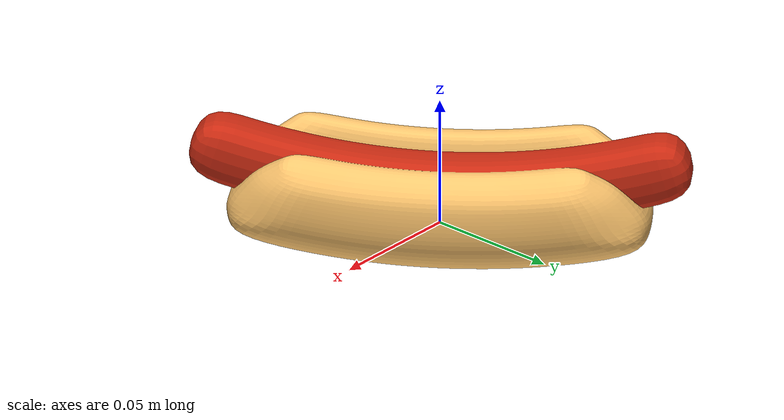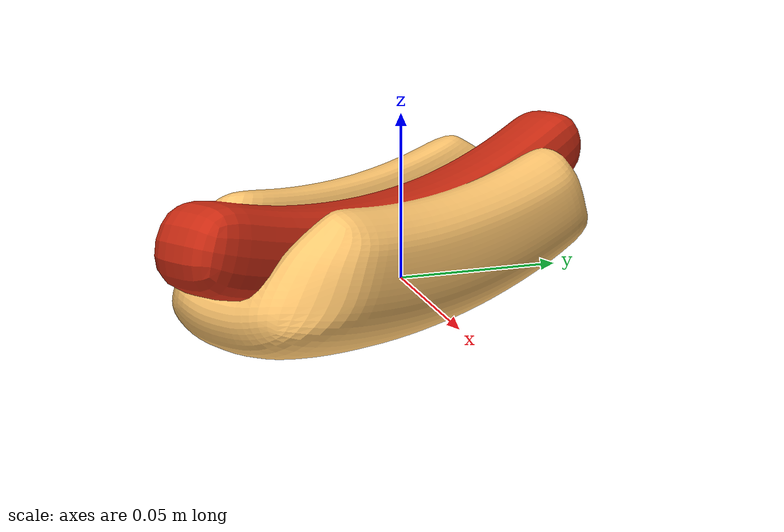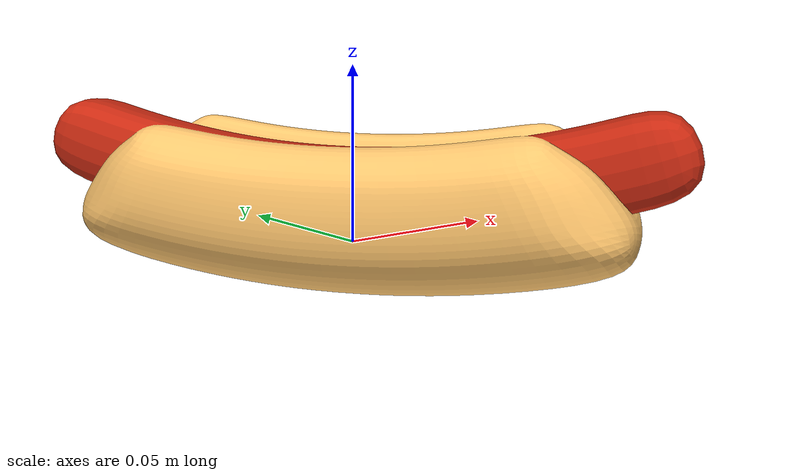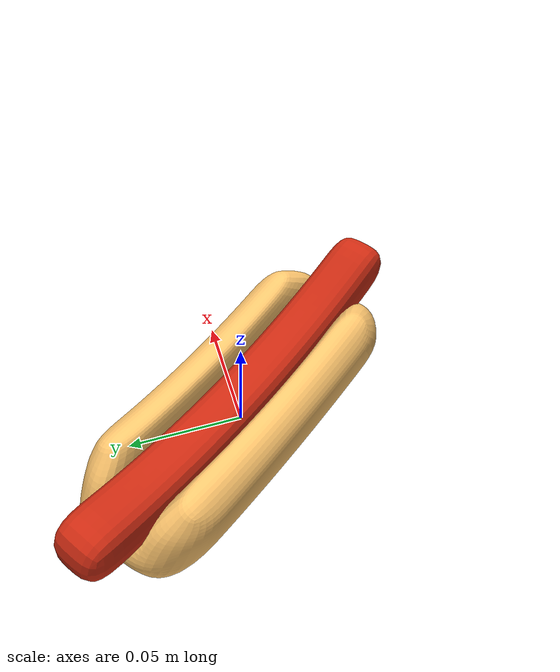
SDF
<sdf version="1.8">
  <model name='Hotdog'>
    <pose>0 0 0 0 0 0</pose>
    <self_collide>false</self_collide>
    <static>true</static>
    <link name='Hotdog/Base'>
      <visual name='Hotdog/HotDog'>
        <pose>0 0 0 0 0 0</pose>
        <geometry>
          <mesh>
            <scale>1 1 1</scale>
            <uri>model://Hotdog/meshes/HotDog.dae</uri>
          </mesh>
        </geometry>
      </visual>
    </link>
  </model>
</sdf>
